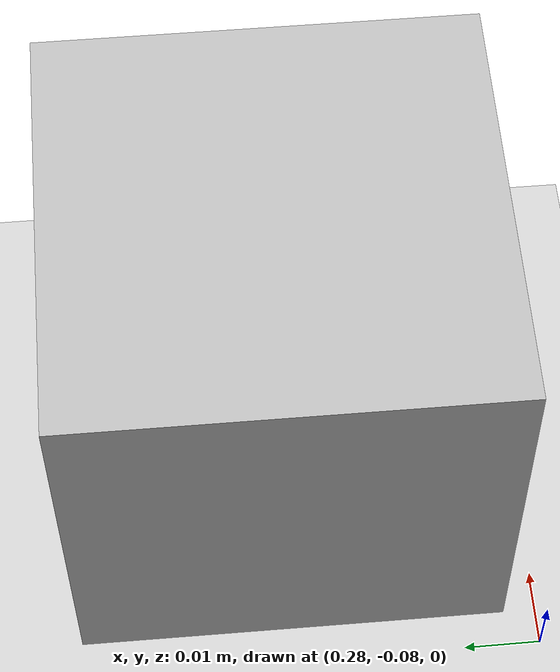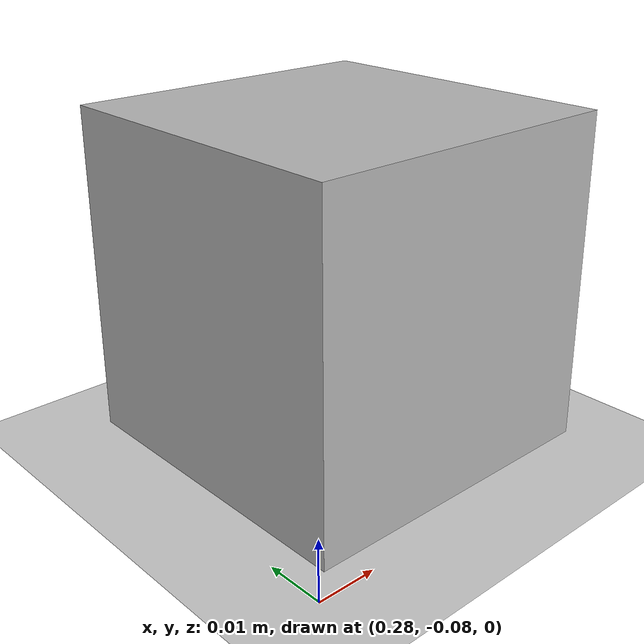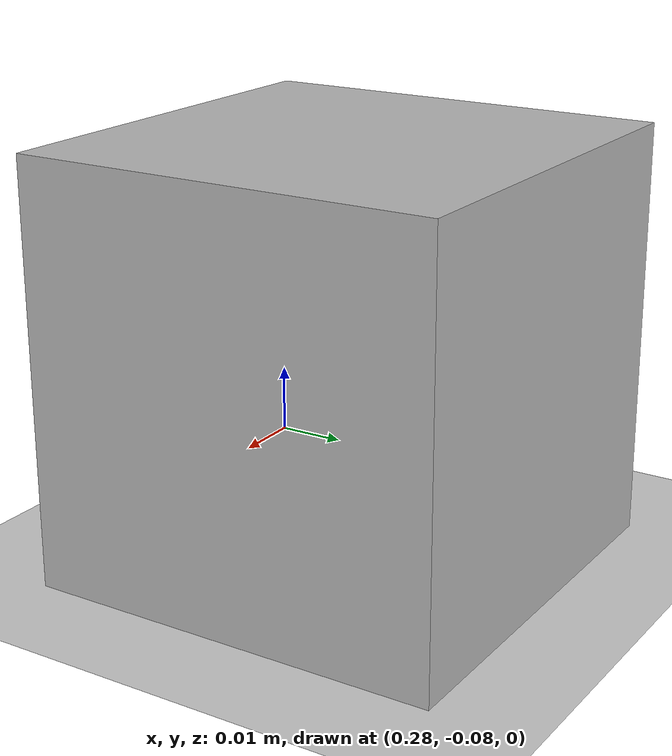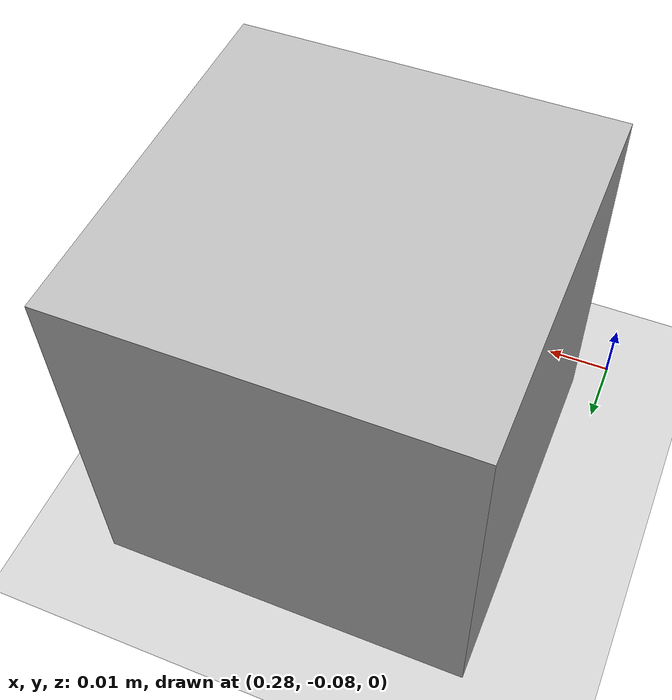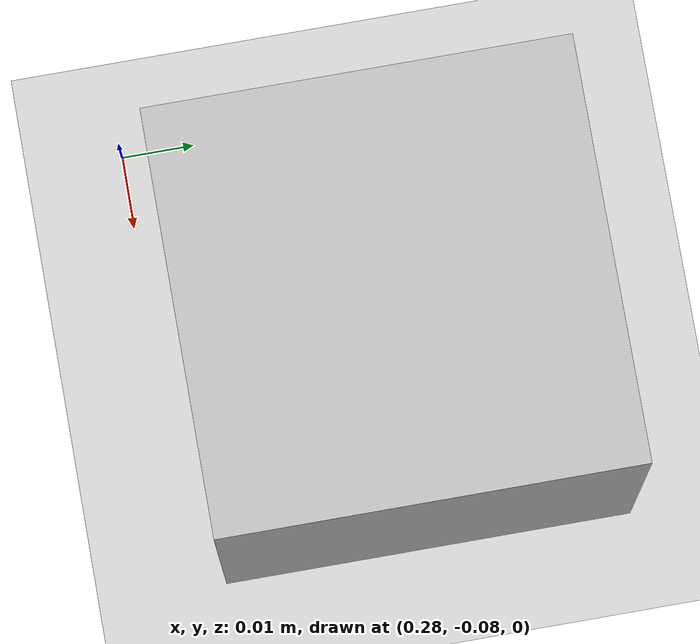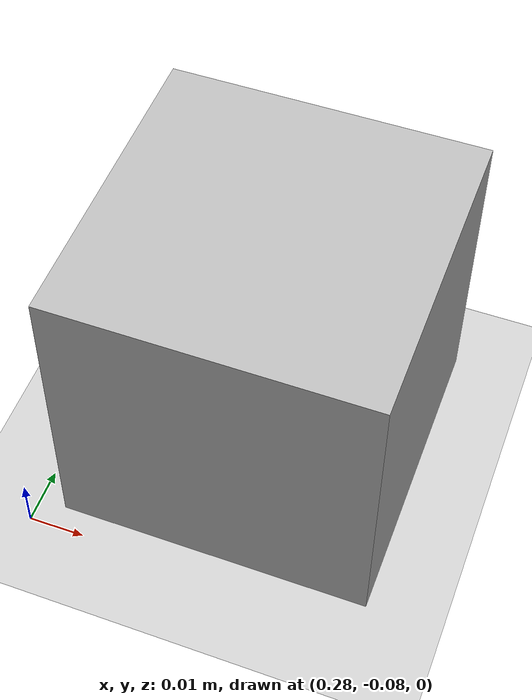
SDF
<sdf version="1.6">
 <world name="default">
  <light name="sun" type="directional">
   <pose>0 0 10 0 -0 0</pose>
   <diffuse>0.8 0.8 0.8 1</diffuse>
   <specular>0.1 0.1 0.1 1</specular>
   <attenuation>
    <range>1000</range>
    <constant>0.9</constant>
    <linear>0.01</linear>
    <quadratic>0.001</quadratic>
   </attenuation>
   <direction>-0.5 0.5 -1</direction>
  </light>
  <model name="ground_plane">
   <static>1</static>
   <link name="link">
    <collision name="collision">
     <geometry><plane><normal>0 0 1</normal><size>100 100</size></plane></geometry>
     <surface><friction><ode><mu>100</mu><mu2>50</mu2></ode></friction></surface>
    </collision>
    <visual name="visual">
     <cast_shadows>0</cast_shadows>
     <geometry><plane><normal>0 0 1</normal><size>100 100</size></plane></geometry>
     <material>
      <script><uri>file://media/materials/scripts/gazebo.material</uri><name>Gazebo/Grey</name></script>
     </material>
    </visual>
   </link>
  </model>
  <gravity>0 0 -9.8</gravity>
  <magnetic_field>6e-06 2.3e-05 -4.2e-05</magnetic_field>
  <atmosphere type="adiabatic"/>
  <physics name="default_physics" default="0" type="ode">
   <max_step_size>0.001</max_step_size>
   <real_time_factor>1</real_time_factor>
   <real_time_update_rate>1000</real_time_update_rate>
  </physics>
  <scene><ambient>0.4 0.4 0.4 1</ambient><background>0.7 0.7 0.7 1</background><shadows>1</shadows></scene>
  <spherical_coordinates>
   <surface_model>EARTH_WGS84</surface_model>
   <latitude_deg>0</latitude_deg>
   <longitude_deg>0</longitude_deg>
   <elevation>0</elevation>
   <heading_deg>0</heading_deg>
  </spherical_coordinates>
  <model name="my_model">
   <pose>0.312723 -0.047726 0.027991 -4e-06 3e-06 0</pose>
   <static>0</static>
   <link name="link">
    <inertial>
     <mass>0.01</mass>
     <inertia><ixx>0.083</ixx><ixy>0</ixy><ixz>0</ixz><iyy>0.083</iyy><iyz>0</iyz><izz>0.083</izz></inertia>
    </inertial>
    <collision name="collision">
     <geometry><mesh><uri>model://aruco_cube/meshes/aruco_cube.dae</uri><scale>1 1 1</scale></mesh></geometry>
    </collision>
    <visual name="visual">
     <geometry><mesh><uri>model://aruco_cube/meshes/aruco_cube.dae</uri><scale>1 1 1</scale></mesh></geometry>
    </visual>
   </link>
  </model>
 </world>
</sdf>
